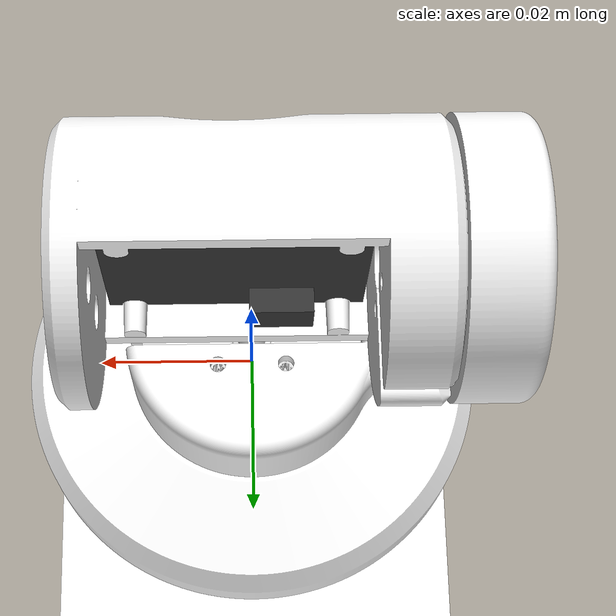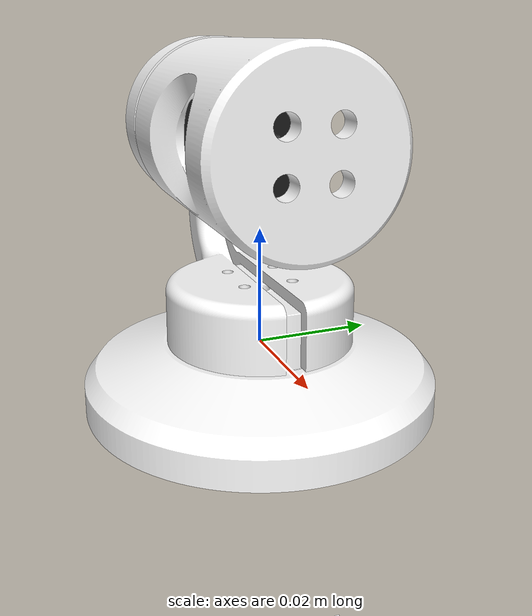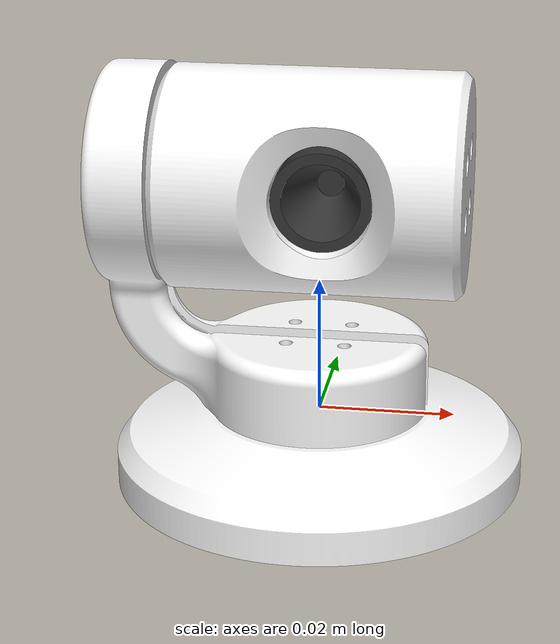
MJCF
<mujoco model="gimbal">
  <compiler angle="radian" meshdir="../assets" autolimits="true"/>
  <option timestep="0.0025"/>

  <visual>
    <headlight ambient="0.4 0.4 0.4" diffuse="0.8 0.8 0.8" specular="0.1 0.1 0.1"/>
    <quality shadowsize="4096"/> <!-- High resolution shadows -->
    <global offwidth="1920" offheight="1080"/>
  </visual>

  <default>
    <geom rgba="1 1 1 1" condim="3"/>
    <joint armature="0.001" damping="0.1"/>
    <mesh scale="0.001 0.001 0.001"/>
  </default>

  <asset>
    <!-- Newly added assets -->
    <mesh name="base_mesh" file="Base.stl"/>
    <mesh name="main_body_mesh" file="Main Body.stl"/>
    <mesh name="cam_mount_mesh" file="Cam_mount_2.stl"/>
    <mesh name="ov_cam_mesh" file="OV Cam.stl"/>
    <mesh name="motor_mesh_1" file="ML2204B 2204-260kv 2.step.stl"/>
    <mesh name="motor_mesh_2" file="ML2204B 2204-260kv 2.step (1).stl"/>

    <texture name="grid" type="2d" builtin="checker" rgb1=".1 .2 .3" rgb2=".2 .3 .4" width="300" height="300" mark="edge" markrgb=".2 .3 .4"/>
    <material name="grid" texture="grid" texrepeat="2 2" texuniform="true" reflectance=".2"/>
  </asset>

  <worldbody>
    <light pos="0 0 2" dir="0 0 -1" castshadow="true"/>
    <light pos="2 2 2" dir="-1 -1 -1" castshadow="true"/>

    <!-- Floor to catch shadows -->
    <geom name="floor" size="0 0 .05" type="plane" material="grid" pos="0 0 -0.1"/>

    <body name="base" pos="0 0 0">
      <geom name="base_geom" type="mesh" mesh="base_mesh"/>
      <geom name="yaw_motor_geom" type="mesh" mesh="motor_mesh_1"/>

      <body name="yaw_arm" pos="0 0 0">
        <joint name="yaw" type="hinge" pos="0 0 0.0031" axis="0 0 1" range="-3.14 3.14"/>
        <geom name="main_body_geom" type="mesh" mesh="main_body_mesh"/>
        <geom name="pitch_motor_geom" type="mesh" mesh="motor_mesh_2"/>

        <body name="camera_body" pos="0 0 0">
          <joint name="pitch" type="hinge" pos="-0.022 0 0.0353" axis="1 0 0" range="-3.14 3.14"/>
          <geom name="cam_mount_geom" type="mesh" mesh="cam_mount_mesh"/>
          <geom name="ov_cam_geom" type="mesh" mesh="ov_cam_mesh" rgba="0.2 0.2 0.2 1"/>
        </body>
      </body>
    </body>
  </worldbody>

  <actuator>
    <position name="yaw_act" joint="yaw" forcelimited="true" forcerange="-5 5" kp="10" ctrllimited="true" ctrlrange="-3.14 3.14"/>
    <position name="pitch_act" joint="pitch" forcelimited="true" forcerange="-5 5" kp="10" ctrllimited="true" ctrlrange="-3.14 3.14"/>
  </actuator>
</mujoco>
